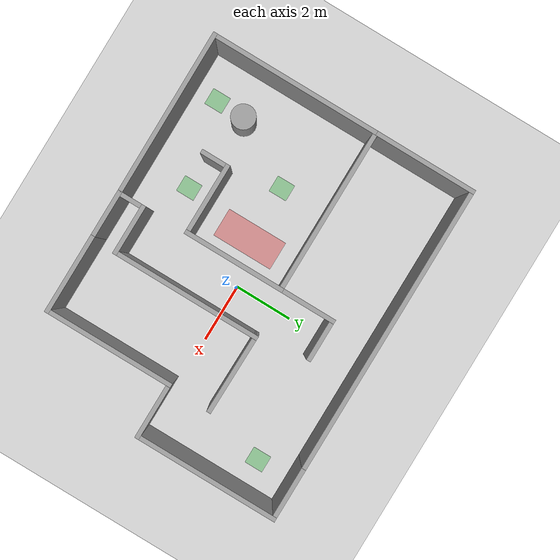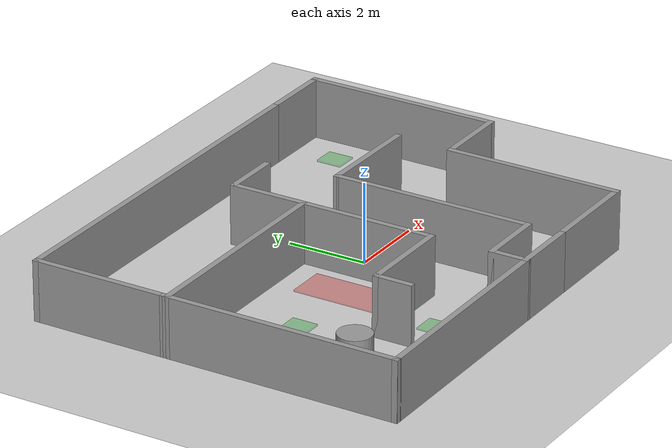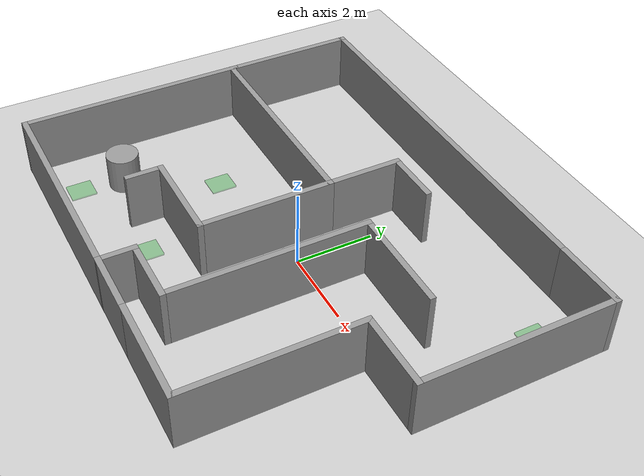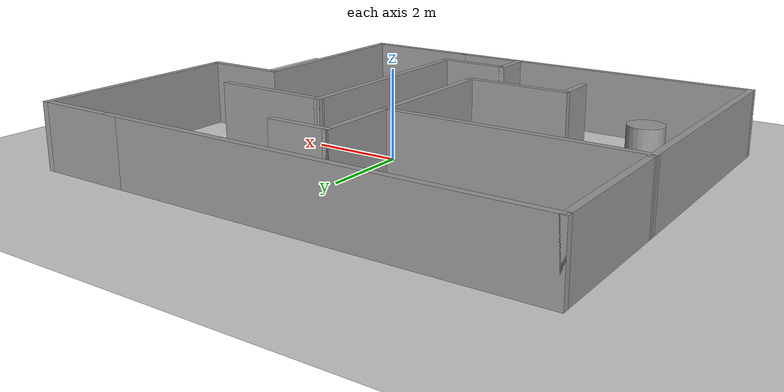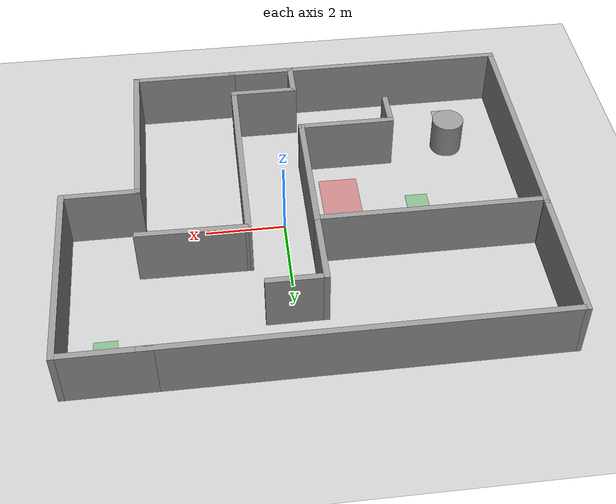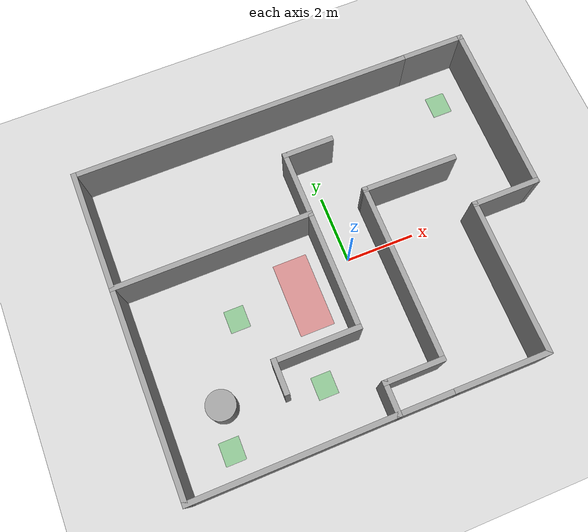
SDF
<sdf version="1.7">
 <world name="default">
  <light name="sun" type="directional">
   <pose>0 0 10 0 -0 0</pose>
   <diffuse>0.8 0.8 0.8 1</diffuse>
   <specular>0.2 0.2 0.2 1</specular>
   <attenuation>
    <range>1000</range>
    <constant>0.9</constant>
    <linear>0.01</linear>
    <quadratic>0.001</quadratic>
   </attenuation>
   <direction>-0.5 0.1 -0.9</direction>
   <spot><inner_angle>0</inner_angle><outer_angle>0</outer_angle><falloff>0</falloff></spot>
  </light>
  <model name="ground_plane">
   <static>1</static>
   <link name="link">
    <collision name="collision">
     <geometry><plane><normal>0 0 1</normal><size>100 100</size></plane></geometry>
     <surface>
      <contact><collide_bitmask>65535</collide_bitmask></contact>
      <friction><ode><mu>100</mu><mu2>50</mu2></ode></friction>
     </surface>
    </collision>
    <visual name="visual">
     <cast_shadows>0</cast_shadows>
     <geometry><plane><normal>0 0 1</normal><size>100 100</size></plane></geometry>
     <material>
      <script><uri>file://media/materials/scripts/gazebo.material</uri><name>Gazebo/Grey</name></script>
     </material>
    </visual>
   </link>
  </model>
  <gravity>0 0 -9.8</gravity>
  <magnetic_field>6e-06 2.3e-05 -4.2e-05</magnetic_field>
  <atmosphere type="adiabatic"/>
  <physics type="ode">
   <max_step_size>0.001</max_step_size>
   <real_time_factor>1</real_time_factor>
   <real_time_update_rate>1000</real_time_update_rate>
  </physics>
  <scene><ambient>0.4 0.4 0.4 1</ambient><background>0.7 0.7 0.7 1</background><shadows>1</shadows></scene>
  <spherical_coordinates>
   <surface_model>EARTH_WGS84</surface_model>
   <latitude_deg>0</latitude_deg>
   <longitude_deg>0</longitude_deg>
   <elevation>0</elevation>
   <heading_deg>0</heading_deg>
  </spherical_coordinates>
  <model name="map_curr">
   <pose>-0.427514 0.048167 -0 0 -0 0</pose>
   <link name="Wall_11">
    <collision name="Wall_11_Collision">
     <geometry><box><size>2.75 0.15 1.5</size></box></geometry>
     <pose>0 0 0.75 0 -0 0</pose>
    </collision>
    <visual name="Wall_11_Visual">
     <pose>0 0 0.75 0 -0 0</pose>
     <geometry><box><size>2.75 0.15 1.5</size></box></geometry>
     <material>
      <script><uri>file://media/materials/scripts/gazebo.material</uri><name>Gazebo/Grey</name></script>
      <ambient>1 1 1 1</ambient>
     </material>
     <meta><layer>0</layer></meta>
    </visual>
    <pose>2.70007 -4.58987 0 0 -0 3.14159</pose>
   </link>
   <link name="Wall_19">
    <collision name="Wall_19_Collision">
     <geometry><box><size>3.5 0.15 1.5</size></box></geometry>
     <pose>0 0 0.75 0 -0 0</pose>
    </collision>
    <visual name="Wall_19_Visual">
     <pose>0 0 0.75 0 -0 0</pose>
     <geometry><box><size>3.5 0.15 1.5</size></box></geometry>
     <material>
      <script><uri>file://media/materials/scripts/gazebo.material</uri><name>Gazebo/Grey</name></script>
      <ambient>1 1 1 1</ambient>
     </material>
     <meta><layer>0</layer></meta>
    </visual>
    <pose>-0.24993 -0.510867 0 0 -0 -1.5708</pose>
   </link>
   <link name="Wall_2">
    <collision name="Wall_2_Collision">
     <geometry><box><size>3.5 0.15 1.5</size></box></geometry>
     <pose>0 0 0.75 0 -0 0</pose>
    </collision>
    <visual name="Wall_2_Visual">
     <pose>0 0 0.75 0 -0 0</pose>
     <geometry><box><size>3.5 0.15 1.5</size></box></geometry>
     <material>
      <script><uri>file://media/materials/scripts/gazebo.material</uri><name>Gazebo/Grey</name></script>
      <ambient>1 1 1 1</ambient>
     </material>
     <meta><layer>0</layer></meta>
    </visual>
    <pose>-5.84993 2.93513 0 0 -0 -1.5708</pose>
   </link>
   <link name="Wall_20">
    <collision name="Wall_20_Collision">
     <geometry><box><size>2.5 0.15 1.5</size></box></geometry>
     <pose>0 0 0.75 0 -0 0</pose>
    </collision>
    <visual name="Wall_20_Visual">
     <pose>0 0 0.75 0 -0 0</pose>
     <geometry><box><size>2.5 0.15 1.5</size></box></geometry>
     <material>
      <script><uri>file://media/materials/scripts/gazebo.material</uri><name>Gazebo/Grey</name></script>
      <ambient>1 1 1 1</ambient>
     </material>
     <meta><layer>0</layer></meta>
    </visual>
    <pose>-1.42493 -2.18587 0 0 -0 3.14159</pose>
   </link>
   <link name="Wall_21">
    <collision name="Wall_21_Collision">
     <geometry><box><size>1 0.15 1.5</size></box></geometry>
     <pose>0 0 0.75 0 -0 0</pose>
    </collision>
    <visual name="Wall_21_Visual">
     <pose>0 0 0.75 0 -0 0</pose>
     <geometry><box><size>1 0.15 1.5</size></box></geometry>
     <material>
      <script><uri>file://media/materials/scripts/gazebo.material</uri><name>Gazebo/Grey</name></script>
      <ambient>1 1 1 1</ambient>
     </material>
     <meta><layer>0</layer></meta>
    </visual>
    <pose>-2.59993 -2.61087 0 0 -0 -1.5708</pose>
   </link>
   <link name="Wall_23">
    <collision name="Wall_23_Collision">
     <geometry><box><size>1.75 0.15 1.5</size></box></geometry>
     <pose>0 0 0.75 0 -0 0</pose>
    </collision>
    <visual name="Wall_23_Visual">
     <pose>0 0 0.75 0 -0 0</pose>
     <geometry><box><size>1.75 0.15 1.5</size></box></geometry>
     <material>
      <script><uri>file://media/materials/scripts/gazebo.material</uri><name>Gazebo/Grey</name></script>
      <ambient>1 1 1 1</ambient>
     </material>
     <meta><layer>0</layer></meta>
    </visual>
    <pose>0.60007 -4.58987 0 0 -0 3.14159</pose>
   </link>
   <link name="Wall_24">
    <collision name="Wall_24_Collision">
     <geometry><box><size>1 0.15 1.5</size></box></geometry>
     <pose>0 0 0.75 0 -0 0</pose>
    </collision>
    <visual name="Wall_24_Visual">
     <pose>0 0 0.75 0 -0 0</pose>
     <geometry><box><size>1 0.15 1.5</size></box></geometry>
     <material>
      <script><uri>file://media/materials/scripts/gazebo.material</uri><name>Gazebo/Grey</name></script>
      <ambient>1 1 1 1</ambient>
     </material>
     <meta><layer>0</layer></meta>
    </visual>
    <pose>-0.19993 -4.16487 0 0 -0 1.5708</pose>
   </link>
   <link name="Wall_25">
    <collision name="Wall_25_Collision">
     <geometry><box><size>1.75 0.15 1.5</size></box></geometry>
     <pose>0 0 0.75 0 -0 0</pose>
    </collision>
    <visual name="Wall_25_Visual">
     <pose>0 0 0.75 0 -0 0</pose>
     <geometry><box><size>1.75 0.15 1.5</size></box></geometry>
     <material>
      <script><uri>file://media/materials/scripts/gazebo.material</uri><name>Gazebo/Grey</name></script>
      <ambient>1 1 1 1</ambient>
     </material>
     <meta><layer>0</layer></meta>
    </visual>
    <pose>0.60007 -3.73987 0 0 -0 0</pose>
   </link>
   <link name="Wall_32">
    <collision name="Wall_32_Collision">
     <geometry><box><size>5.78927 0.15 1.5</size></box></geometry>
     <pose>0 0 0.75 0 -0 0</pose>
    </collision>
    <visual name="Wall_32_Visual">
     <pose>0 0 0.75 0 -0 0</pose>
     <geometry><box><size>5.78927 0.15 1.5</size></box></geometry>
     <material>
      <script><uri>file://media/materials/scripts/gazebo.material</uri><name>Gazebo/Grey</name></script>
      <ambient>1 1 1 1</ambient>
     </material>
     <meta><layer>0</layer></meta>
    </visual>
    <pose>-3.01943 -4.59987 0 0 -0 -3.13805</pose>
   </link>
   <link name="Wall_33">
    <collision name="Wall_33_Collision">
     <geometry><box><size>6.0198 0.15 1.5</size></box></geometry>
     <pose>0 0 0.75 0 -0 0</pose>
    </collision>
    <visual name="Wall_33_Visual">
     <pose>0 0 0.75 0 -0 0</pose>
     <geometry><box><size>6.0198 0.15 1.5</size></box></geometry>
     <material>
      <script><uri>file://media/materials/scripts/gazebo.material</uri><name>Gazebo/Grey</name></script>
      <ambient>1 1 1 1</ambient>
     </material>
     <meta><layer>0</layer></meta>
    </visual>
    <pose>-5.84443 -1.67487 0 0 -0 1.57267</pose>
   </link>
   <link name="Wall_35">
    <collision name="Wall_35_Collision">
     <geometry><box><size>5.74976 0.15 1.5</size></box></geometry>
     <pose>0 0 0.75 0 -0 0</pose>
    </collision>
    <visual name="Wall_35_Visual">
     <pose>0 0 0.75 0 -0 0</pose>
     <geometry><box><size>5.74976 0.15 1.5</size></box></geometry>
     <material>
      <script><uri>file://media/materials/scripts/gazebo.material</uri><name>Gazebo/Grey</name></script>
      <ambient>1 1 1 1</ambient>
     </material>
     <meta><layer>0</layer></meta>
    </visual>
    <pose>-3.04993 1.16413 0 0 -0 3.14159</pose>
   </link>
   <link name="Wall_38">
    <collision name="Wall_38_Collision">
     <geometry><box><size>2 0.15 1.5</size></box></geometry>
     <pose>0 0 0.75 0 -0 0</pose>
    </collision>
    <visual name="Wall_38_Visual">
     <pose>0 0 0.75 0 -0 0</pose>
     <geometry><box><size>2 0.15 1.5</size></box></geometry>
     <material>
      <script><uri>file://media/materials/scripts/gazebo.material</uri><name>Gazebo/Grey</name></script>
      <ambient>1 1 1 1</ambient>
     </material>
     <meta><layer>0</layer></meta>
    </visual>
    <pose>-0.24993 2.08913 0 0 -0 1.5708</pose>
   </link>
   <link name="Wall_39">
    <collision name="Wall_39_Collision">
     <geometry><box><size>1.5 0.15 1.5</size></box></geometry>
     <pose>0 0 0.75 0 -0 0</pose>
    </collision>
    <visual name="Wall_39_Visual">
     <pose>0 0 0.75 0 -0 0</pose>
     <geometry><box><size>1.5 0.15 1.5</size></box></geometry>
     <material>
      <script><uri>file://media/materials/scripts/gazebo.material</uri><name>Gazebo/Grey</name></script>
      <ambient>1 1 1 1</ambient>
     </material>
     <meta><layer>0</layer></meta>
    </visual>
    <pose>0.42507 3.01413 0 0 -0 0</pose>
   </link>
   <link name="Wall_41">
    <collision name="Wall_41_Collision">
     <geometry><box><size>10 0.15 1.5</size></box></geometry>
     <pose>0 0 0.75 0 -0 0</pose>
    </collision>
    <visual name="Wall_41_Visual">
     <pose>0 0 0.75 0 -0 0</pose>
     <geometry><box><size>10 0.15 1.5</size></box></geometry>
     <material>
      <script><uri>file://media/materials/scripts/gazebo.material</uri><name>Gazebo/Grey</name></script>
      <ambient>1 1 1 1</ambient>
     </material>
     <meta><layer>0</layer></meta>
    </visual>
    <pose>-0.92493 4.61013 0 0 -0 0</pose>
   </link>
   <link name="Wall_45">
    <collision name="Wall_45_Collision">
     <geometry><box><size>4.5 0.15 1.5</size></box></geometry>
     <pose>0 0 0.75 0 -0 0</pose>
    </collision>
    <visual name="Wall_45_Visual">
     <pose>0 0 0.75 0 -0 0</pose>
     <geometry><box><size>4.5 0.15 1.5</size></box></geometry>
     <material>
      <script><uri>file://media/materials/scripts/gazebo.material</uri><name>Gazebo/Grey</name></script>
      <ambient>1 1 1 1</ambient>
     </material>
     <meta><layer>0</layer></meta>
    </visual>
    <pose>4.00007 -2.41487 0 0 -0 1.5708</pose>
   </link>
   <link name="Wall_48">
    <collision name="Wall_48_Collision">
     <geometry><box><size>2 0.15 1.5</size></box></geometry>
     <pose>0 0 0.75 0 -0 0</pose>
    </collision>
    <visual name="Wall_48_Visual">
     <pose>0 0 0.75 0 -0 0</pose>
     <geometry><box><size>2 0.15 1.5</size></box></geometry>
     <material>
      <script><uri>file://media/materials/scripts/gazebo.material</uri><name>Gazebo/Grey</name></script>
      <ambient>1 1 1 1</ambient>
     </material>
     <meta><layer>0</layer></meta>
    </visual>
    <pose>4.92507 -0.239867 0 0 -0 0</pose>
   </link>
   <link name="Wall_49">
    <collision name="Wall_49_Collision">
     <geometry><box><size>5 0.15 1.5</size></box></geometry>
     <pose>0 0 0.75 0 -0 0</pose>
    </collision>
    <visual name="Wall_49_Visual">
     <pose>0 0 0.75 0 -0 0</pose>
     <geometry><box><size>5 0.15 1.5</size></box></geometry>
     <material>
      <script><uri>file://media/materials/scripts/gazebo.material</uri><name>Gazebo/Grey</name></script>
      <ambient>1 1 1 1</ambient>
     </material>
     <meta><layer>0</layer></meta>
    </visual>
    <pose>5.85007 2.18513 0 0 -0 1.5708</pose>
   </link>
   <link name="Wall_50">
    <collision name="Wall_50_Collision">
     <geometry><box><size>2.25 0.15 1.5</size></box></geometry>
     <pose>0 0 0.75 0 -0 0</pose>
    </collision>
    <visual name="Wall_50_Visual">
     <pose>0 0 0.75 0 -0 0</pose>
     <geometry><box><size>2.25 0.15 1.5</size></box></geometry>
     <material>
      <script><uri>file://media/materials/scripts/gazebo.material</uri><name>Gazebo/Grey</name></script>
      <ambient>1 1 1 1</ambient>
     </material>
     <meta><layer>0</layer></meta>
    </visual>
    <pose>4.80007 4.61013 0 0 -0 3.14159</pose>
   </link>
   <link name="Wall_52">
    <collision name="Wall_52_Collision">
     <geometry><box><size>5 0.15 1.5</size></box></geometry>
     <pose>0 0 0.75 0 -0 0</pose>
    </collision>
    <visual name="Wall_52_Visual">
     <pose>0 0 0.75 0 -0 0</pose>
     <geometry><box><size>5 0.15 1.5</size></box></geometry>
     <material>
      <script><uri>file://media/materials/scripts/gazebo.material</uri><name>Gazebo/Grey</name></script>
      <ambient>1 1 1 1</ambient>
     </material>
     <meta><layer>0</layer></meta>
    </visual>
    <pose>1.40007 -1.16487 0 0 -0 -1.5708</pose>
   </link>
   <link name="Wall_6">
    <collision name="Wall_6_Collision">
     <geometry><box><size>2.78267 0.15 1.5</size></box></geometry>
     <pose>0 0 0.75 0 -0 0</pose>
    </collision>
    <visual name="Wall_6_Visual">
     <pose>0 0 0.75 0 -0 0</pose>
     <geometry><box><size>2.78267 0.15 1.5</size></box></geometry>
     <material>
      <script><uri>file://media/materials/scripts/gazebo.material</uri><name>Gazebo/Grey</name></script>
      <ambient>1 1 1 1</ambient>
     </material>
     <meta><layer>0</layer></meta>
    </visual>
    <pose>2.71657 1.24413 0 0 -0 3.12944</pose>
   </link>
   <static>1</static>
  </model>
  <model name="map_curr_target">
   <link name="spawn_1">
    <inertial>
     <mass>0.0989744</mass>
     <inertia>
      <ixx>0.0386176</ixx>
      <ixy>0</ixy>
      <ixz>0</ixz>
      <iyy>0.00826513</iyy>
      <iyz>0</iyz>
      <izz>0.0468482</izz>
     </inertia>
    </inertial>
    <visual name="visual">
     <geometry><box><size>1 2.16334 0.045751</size></box></geometry>
     <material>
      <lighting>1</lighting>
      <script><uri>file://media/materials/scripts/gazebo.material</uri><name>Gazebo/Red</name></script>
      <shader type="pixel"><normal_map>__default__</normal_map></shader>
      <ambient>1 0 0 1</ambient>
      <diffuse>1 0 0 1</diffuse>
      <specular>0.1 0.1 0.1 1</specular>
      <emissive>0 0 0 1</emissive>
     </material>
     <transparency>0.6</transparency>
    </visual>
   </link>
   <static>1</static>
   <pose>-1.5592 -0.465232 0 0 -0 0</pose>
  </model>
  <model name="cylinder_curr">
   <link name="link_5">
    <inertial>
     <mass>1</mass>
     <inertia><ixx>0.145833</ixx><ixy>0</ixy><ixz>0</ixz><iyy>0.145833</iyy><iyz>0</iyz><izz>0.125</izz></inertia>
    </inertial>
    <pose>-2e-06 -0 0 0 -0 0</pose>
    <visual name="visual">
     <geometry><cylinder><radius>0.414455</radius><length>1</length></cylinder></geometry>
     <material>
      <lighting>1</lighting>
      <script><uri>file://media/materials/scripts/gazebo.material</uri><name>Gazebo/Grey</name></script>
      <shader type="pixel"/>
     </material>
    </visual>
    <collision name="collision">
     <geometry><cylinder><radius>0.414455</radius><length>1</length></cylinder></geometry>
     <surface>
      <friction>
       <ode><mu>1</mu><mu2>1</mu2><fdir1>0 0 0</fdir1><slip1>0</slip1><slip2>0</slip2></ode>
       <torsional>
        <coefficient>1</coefficient>
        <patch_radius>0</patch_radius>
        <surface_radius>0</surface_radius>
        <use_patch_radius>1</use_patch_radius>
        <ode><slip>0</slip></ode>
       </torsional>
      </friction>
      <bounce><restitution_coefficient>0</restitution_coefficient><threshold>1e+06</threshold></bounce>
      <contact>
       <collide_without_contact>0</collide_without_contact>
       <collide_without_contact_bitmask>1</collide_without_contact_bitmask>
       <collide_bitmask>1</collide_bitmask>
       <ode>
        <soft_cfm>0</soft_cfm>
        <soft_erp>0.2</soft_erp>
        <kp>1e+13</kp>
        <kd>1</kd>
        <max_vel>0.01</max_vel>
        <min_depth>0</min_depth>
       </ode>
       <bullet>
        <split_impulse>1</split_impulse>
        <split_impulse_penetration_threshold>-0.01</split_impulse_penetration_threshold>
        <soft_cfm>0</soft_cfm>
        <soft_erp>0.2</soft_erp>
        <kp>1e+13</kp>
        <kd>1</kd>
       </bullet>
      </contact>
     </surface>
    </collision>
   </link>
   <static>1</static>
   <pose>-4.70206 -2.59225 0.42467 0 -0 0</pose>
  </model>
  <model name="map_curr_spawn">
   <link name="spawn_1">
    <inertial>
     <mass>0.0513229</mass>
     <inertia>
      <ixx>0.00428817</ixx>
      <ixy>0</ixy>
      <ixz>0</ixz>
      <iyy>0.00428817</iyy>
      <iyz>0</iyz>
      <izz>0.00855382</izz>
     </inertia>
    </inertial>
    <pose>-2.05642 0.487318 -0 0 -0 0</pose>
    <visual name="visual">
     <geometry><box><size>0.571772 0.643942 0.051323</size></box></geometry>
     <material>
      <lighting>1</lighting>
      <script><uri>file://media/materials/scripts/gazebo.material</uri><name>Gazebo/Green</name></script>
      <shader type="pixel"><normal_map>__default__</normal_map></shader>
      <ambient>0 1 0 1</ambient>
      <diffuse>0 1 0 1</diffuse>
      <specular>0.1 0.1 0.1 1</specular>
      <emissive>0 0 0 1</emissive>
     </material>
     <transparency>0.6</transparency>
    </visual>
   </link>
   <link name="spawn_2">
    <inertial>
     <mass>0.0513229</mass>
     <inertia>
      <ixx>0.00428817</ixx>
      <ixy>0</ixy>
      <ixz>0</ixz>
      <iyy>0.00428817</iyy>
      <iyz>0</iyz>
      <izz>0.00855382</izz>
     </inertia>
    </inertial>
    <pose>-3.41152 -2.80748 -0 0 -0 0</pose>
    <visual name="visual">
     <geometry><box><size>0.571772 0.643942 0.051323</size></box></geometry>
     <material>
      <lighting>1</lighting>
      <script><uri>file://media/materials/scripts/gazebo.material</uri><name>Gazebo/Green</name></script>
      <shader type="pixel"><normal_map>__default__</normal_map></shader>
      <ambient>0 1 0 1</ambient>
      <diffuse>0 1 0 1</diffuse>
      <specular>0.1 0.1 0.1 1</specular>
      <emissive>0 0 0 1</emissive>
     </material>
     <transparency>0.6</transparency>
    </visual>
   </link>
   <link name="spawn_3">
    <inertial>
     <mass>0.0513229</mass>
     <inertia>
      <ixx>0.00428817</ixx>
      <ixy>0</ixy>
      <ixz>0</ixz>
      <iyy>0.00428817</iyy>
      <iyz>0</iyz>
      <izz>0.00855382</izz>
     </inertia>
    </inertial>
    <pose>-0.487475 -2.11783 -0 0 -0 0</pose>
    <visual name="visual">
     <geometry><box><size>0.571772 0.643942 0.051323</size></box></geometry>
     <material>
      <lighting>1</lighting>
      <script><uri>file://media/materials/scripts/gazebo.material</uri><name>Gazebo/Green</name></script>
      <shader type="pixel"><normal_map>__default__</normal_map></shader>
      <ambient>0 1 0 1</ambient>
      <diffuse>0 1 0 1</diffuse>
      <specular>0.1 0.1 0.1 1</specular>
      <emissive>0 0 0 1</emissive>
     </material>
     <transparency>0.6</transparency>
    </visual>
   </link>
   <link name="spawn_4">
    <inertial>
     <mass>0.0513229</mass>
     <inertia>
      <ixx>0.00428817</ixx>
      <ixy>0</ixy>
      <ixz>0</ixz>
      <iyy>0.00428817</iyy>
      <iyz>0</iyz>
      <izz>0.00855382</izz>
     </inertia>
    </inertial>
    <pose>5.95542 4.438 -0 0 -0 0</pose>
    <visual name="visual">
     <geometry><box><size>0.571772 0.643942 0.051323</size></box></geometry>
     <material>
      <lighting>1</lighting>
      <script><uri>file://media/materials/scripts/gazebo.material</uri><name>Gazebo/Green</name></script>
      <shader type="pixel"><normal_map>__default__</normal_map></shader>
      <ambient>0 1 0 1</ambient>
      <diffuse>0 1 0 1</diffuse>
      <specular>0.1 0.1 0.1 1</specular>
      <emissive>0 0 0 1</emissive>
     </material>
     <transparency>0.6</transparency>
    </visual>
   </link>
   <static>1</static>
   <pose>-1.47548 -0.913773 -0 0 -0 0</pose>
  </model>
 </world>
</sdf>
